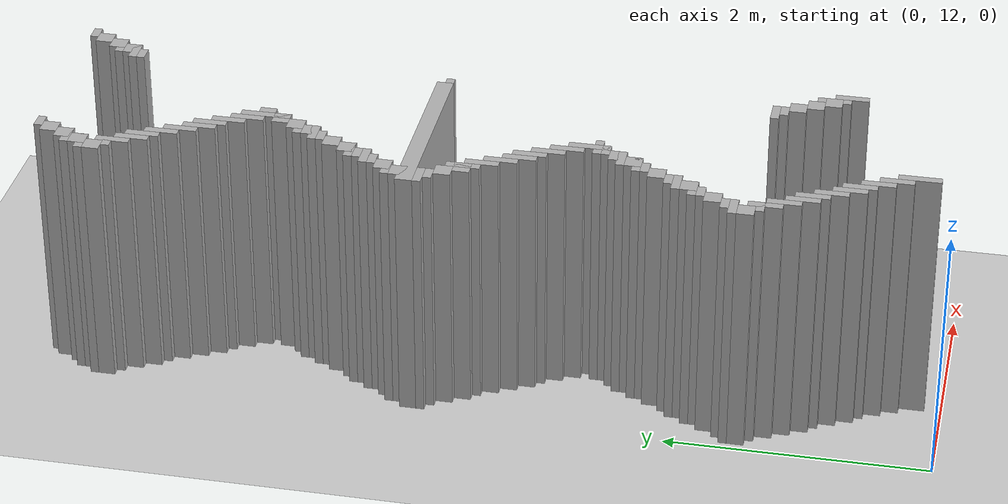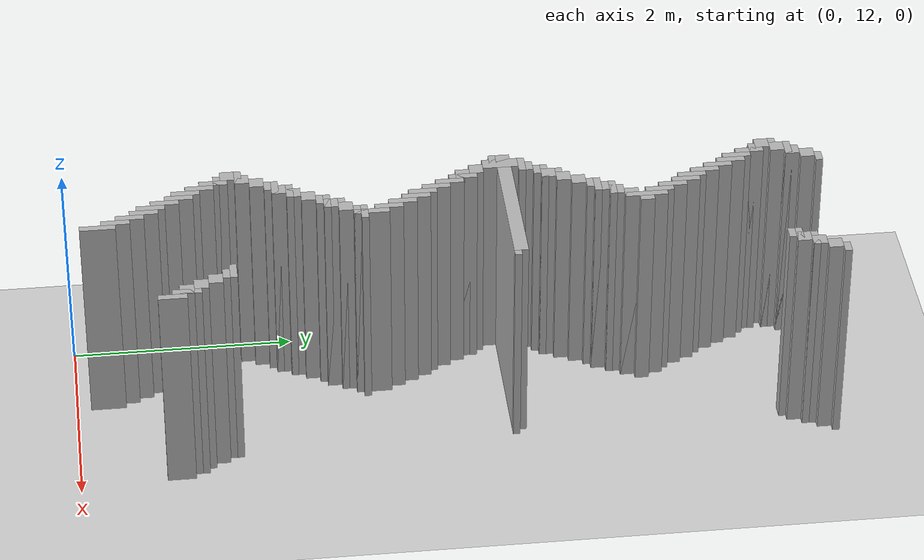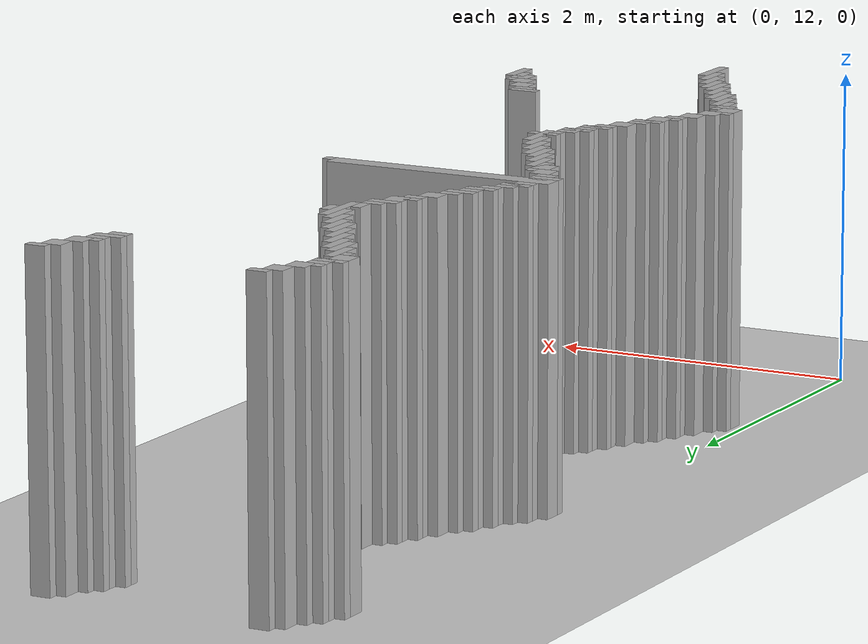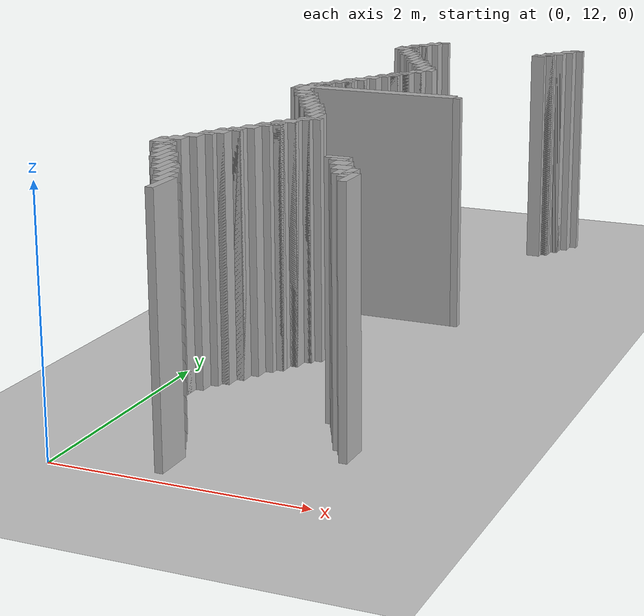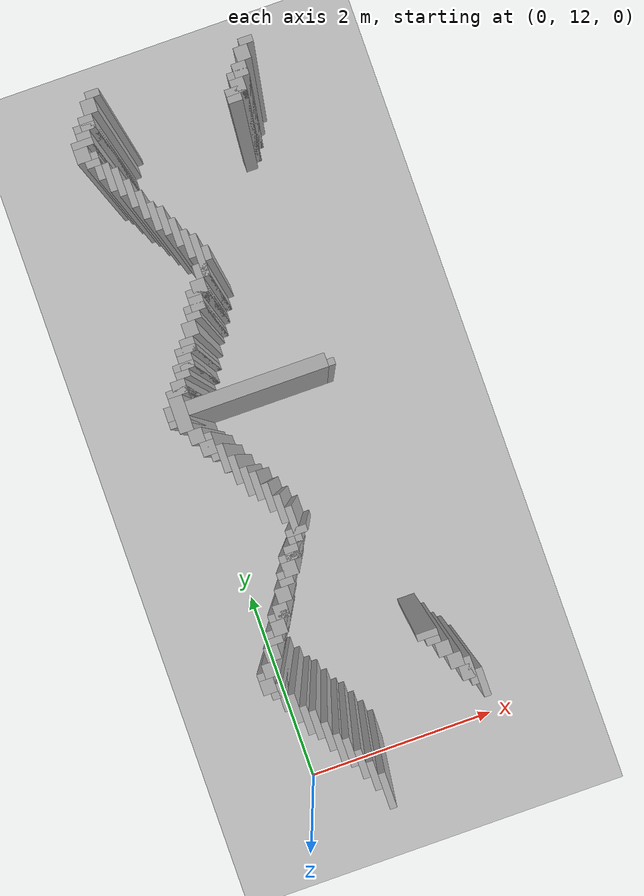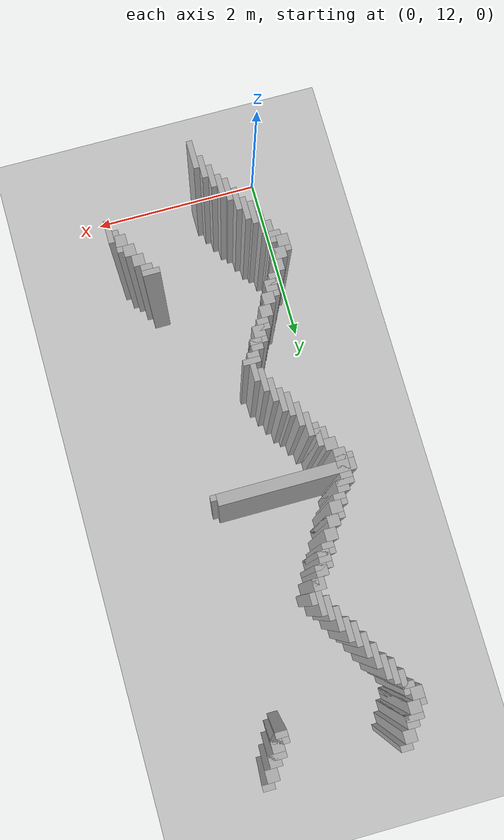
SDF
<sdf version="1.6">
 <world name="slam_world">
  <model name="ground_plane">
   <static>true</static>
   <link name="link">
    <collision name="collision">
     <geometry><plane><normal>0 0 1</normal><size>100 100</size></plane></geometry>
    </collision>
    <visual name="visual">
     <geometry><plane><normal>0 0 1</normal><size>100 100</size></plane></geometry>
     <material>
      <ambient>0.8 0.8 0.8 1</ambient>
      <diffuse>0.8 0.8 0.8 1</diffuse>
      <specular>0.8 0.8 0.8 1</specular>
     </material>
    </visual>
   </link>
  </model>
  <model name="wall_527">
   <static>true</static>
   <pose>0.3829787234042553 18.79787234042553 1.0 0 0 0</pose>
   <link name="link">
    <collision name="collision">
     <geometry><box><size>0.1276595744680851 0.06382978723404255 2.0</size></box></geometry>
    </collision>
    <visual name="visual">
     <geometry><box><size>0.1276595744680851 0.06382978723404255 2.0</size></box></geometry>
     <material><ambient>0.5 0.5 0.5 1</ambient><diffuse>0.7 0.7 0.7 1</diffuse></material>
    </visual>
   </link>
  </model>
  <model name="wall_528">
   <static>true</static>
   <pose>1.7872340425531914 18.79787234042553 1.0 0 0 0</pose>
   <link name="link">
    <collision name="collision">
     <geometry><box><size>0.1276595744680851 0.06382978723404255 2.0</size></box></geometry>
    </collision>
    <visual name="visual">
     <geometry><box><size>0.1276595744680851 0.06382978723404255 2.0</size></box></geometry>
     <material><ambient>0.5 0.5 0.5 1</ambient><diffuse>0.7 0.7 0.7 1</diffuse></material>
    </visual>
   </link>
  </model>
  <model name="wall_533">
   <static>true</static>
   <pose>0.3191489361702127 18.702127659574465 1.0 0 0 0</pose>
   <link name="link">
    <collision name="collision">
     <geometry><box><size>0.1276595744680851 0.1276595744680851 2.0</size></box></geometry>
    </collision>
    <visual name="visual">
     <geometry><box><size>0.1276595744680851 0.1276595744680851 2.0</size></box></geometry>
     <material><ambient>0.5 0.5 0.5 1</ambient><diffuse>0.7 0.7 0.7 1</diffuse></material>
    </visual>
   </link>
  </model>
  <model name="wall_534">
   <static>true</static>
   <pose>1.7234042553191489 18.702127659574465 1.0 0 0 0</pose>
   <link name="link">
    <collision name="collision">
     <geometry><box><size>0.1276595744680851 0.1276595744680851 2.0</size></box></geometry>
    </collision>
    <visual name="visual">
     <geometry><box><size>0.1276595744680851 0.1276595744680851 2.0</size></box></geometry>
     <material><ambient>0.5 0.5 0.5 1</ambient><diffuse>0.7 0.7 0.7 1</diffuse></material>
    </visual>
   </link>
  </model>
  <model name="wall_540">
   <static>true</static>
   <pose>0.2553191489361702 18.574468085106382 1.0 0 0 0</pose>
   <link name="link">
    <collision name="collision">
     <geometry><box><size>0.1276595744680851 0.1276595744680851 2.0</size></box></geometry>
    </collision>
    <visual name="visual">
     <geometry><box><size>0.1276595744680851 0.1276595744680851 2.0</size></box></geometry>
     <material><ambient>0.5 0.5 0.5 1</ambient><diffuse>0.7 0.7 0.7 1</diffuse></material>
    </visual>
   </link>
  </model>
  <model name="wall_541">
   <static>true</static>
   <pose>1.6595744680851063 18.574468085106382 1.0 0 0 0</pose>
   <link name="link">
    <collision name="collision">
     <geometry><box><size>0.1276595744680851 0.1276595744680851 2.0</size></box></geometry>
    </collision>
    <visual name="visual">
     <geometry><box><size>0.1276595744680851 0.1276595744680851 2.0</size></box></geometry>
     <material><ambient>0.5 0.5 0.5 1</ambient><diffuse>0.7 0.7 0.7 1</diffuse></material>
    </visual>
   </link>
  </model>
  <model name="wall_547">
   <static>true</static>
   <pose>0.22340425531914893 18.54255319148936 1.0 0 0 0</pose>
   <link name="link">
    <collision name="collision">
     <geometry><box><size>0.19148936170212766 0.06382978723404255 2.0</size></box></geometry>
    </collision>
    <visual name="visual">
     <geometry><box><size>0.19148936170212766 0.06382978723404255 2.0</size></box></geometry>
     <material><ambient>0.5 0.5 0.5 1</ambient><diffuse>0.7 0.7 0.7 1</diffuse></material>
    </visual>
   </link>
  </model>
  <model name="wall_548">
   <static>true</static>
   <pose>1.627659574468085 18.54255319148936 1.0 0 0 0</pose>
   <link name="link">
    <collision name="collision">
     <geometry><box><size>0.19148936170212766 0.06382978723404255 2.0</size></box></geometry>
    </collision>
    <visual name="visual">
     <geometry><box><size>0.19148936170212766 0.06382978723404255 2.0</size></box></geometry>
     <material><ambient>0.5 0.5 0.5 1</ambient><diffuse>0.7 0.7 0.7 1</diffuse></material>
    </visual>
   </link>
  </model>
  <model name="wall_554">
   <static>true</static>
   <pose>0.19148936170212766 18.446808510638295 1.0 0 0 0</pose>
   <link name="link">
    <collision name="collision">
     <geometry><box><size>0.1276595744680851 0.1276595744680851 2.0</size></box></geometry>
    </collision>
    <visual name="visual">
     <geometry><box><size>0.1276595744680851 0.1276595744680851 2.0</size></box></geometry>
     <material><ambient>0.5 0.5 0.5 1</ambient><diffuse>0.7 0.7 0.7 1</diffuse></material>
    </visual>
   </link>
  </model>
  <model name="wall_555">
   <static>true</static>
   <pose>1.5957446808510638 18.446808510638295 1.0 0 0 0</pose>
   <link name="link">
    <collision name="collision">
     <geometry><box><size>0.1276595744680851 0.1276595744680851 2.0</size></box></geometry>
    </collision>
    <visual name="visual">
     <geometry><box><size>0.1276595744680851 0.1276595744680851 2.0</size></box></geometry>
     <material><ambient>0.5 0.5 0.5 1</ambient><diffuse>0.7 0.7 0.7 1</diffuse></material>
    </visual>
   </link>
  </model>
  <model name="wall_560">
   <static>true</static>
   <pose>0.15957446808510636 18.414893617021274 1.0 0 0 0</pose>
   <link name="link">
    <collision name="collision">
     <geometry><box><size>0.19148936170212766 0.06382978723404255 2.0</size></box></geometry>
    </collision>
    <visual name="visual">
     <geometry><box><size>0.19148936170212766 0.06382978723404255 2.0</size></box></geometry>
     <material><ambient>0.5 0.5 0.5 1</ambient><diffuse>0.7 0.7 0.7 1</diffuse></material>
    </visual>
   </link>
  </model>
  <model name="wall_561">
   <static>true</static>
   <pose>1.5638297872340425 18.414893617021274 1.0 0 0 0</pose>
   <link name="link">
    <collision name="collision">
     <geometry><box><size>0.19148936170212766 0.06382978723404255 2.0</size></box></geometry>
    </collision>
    <visual name="visual">
     <geometry><box><size>0.19148936170212766 0.06382978723404255 2.0</size></box></geometry>
     <material><ambient>0.5 0.5 0.5 1</ambient><diffuse>0.7 0.7 0.7 1</diffuse></material>
    </visual>
   </link>
  </model>
  <model name="wall_570">
   <static>true</static>
   <pose>0.1276595744680851 18.319148936170212 1.0 0 0 0</pose>
   <link name="link">
    <collision name="collision">
     <geometry><box><size>0.1276595744680851 0.1276595744680851 2.0</size></box></geometry>
    </collision>
    <visual name="visual">
     <geometry><box><size>0.1276595744680851 0.1276595744680851 2.0</size></box></geometry>
     <material><ambient>0.5 0.5 0.5 1</ambient><diffuse>0.7 0.7 0.7 1</diffuse></material>
    </visual>
   </link>
  </model>
  <model name="wall_571">
   <static>true</static>
   <pose>1.5319148936170213 18.351063829787233 1.0 0 0 0</pose>
   <link name="link">
    <collision name="collision">
     <geometry><box><size>0.1276595744680851 0.06382978723404255 2.0</size></box></geometry>
    </collision>
    <visual name="visual">
     <geometry><box><size>0.1276595744680851 0.06382978723404255 2.0</size></box></geometry>
     <material><ambient>0.5 0.5 0.5 1</ambient><diffuse>0.7 0.7 0.7 1</diffuse></material>
    </visual>
   </link>
  </model>
  <model name="wall_576">
   <static>true</static>
   <pose>0.22340425531914893 18.191489361702125 1.0 0 0 0</pose>
   <link name="link">
    <collision name="collision">
     <geometry><box><size>0.06382978723404255 0.2553191489361702 2.0</size></box></geometry>
    </collision>
    <visual name="visual">
     <geometry><box><size>0.06382978723404255 0.2553191489361702 2.0</size></box></geometry>
     <material><ambient>0.5 0.5 0.5 1</ambient><diffuse>0.7 0.7 0.7 1</diffuse></material>
    </visual>
   </link>
  </model>
  <model name="wall_583">
   <static>true</static>
   <pose>0.19148936170212766 18.223404255319146 1.0 0 0 0</pose>
   <link name="link">
    <collision name="collision">
     <geometry><box><size>0.1276595744680851 0.06382978723404255 2.0</size></box></geometry>
    </collision>
    <visual name="visual">
     <geometry><box><size>0.1276595744680851 0.06382978723404255 2.0</size></box></geometry>
     <material><ambient>0.5 0.5 0.5 1</ambient><diffuse>0.7 0.7 0.7 1</diffuse></material>
    </visual>
   </link>
  </model>
  <model name="wall_587">
   <static>true</static>
   <pose>0.28723404255319146 18.06382978723404 1.0 0 0 0</pose>
   <link name="link">
    <collision name="collision">
     <geometry><box><size>0.06382978723404255 0.2553191489361702 2.0</size></box></geometry>
    </collision>
    <visual name="visual">
     <geometry><box><size>0.06382978723404255 0.2553191489361702 2.0</size></box></geometry>
     <material><ambient>0.5 0.5 0.5 1</ambient><diffuse>0.7 0.7 0.7 1</diffuse></material>
    </visual>
   </link>
  </model>
  <model name="wall_594">
   <static>true</static>
   <pose>0.351063829787234 18.0 1.0 0 0 0</pose>
   <link name="link">
    <collision name="collision">
     <geometry><box><size>0.06382978723404255 0.2553191489361702 2.0</size></box></geometry>
    </collision>
    <visual name="visual">
     <geometry><box><size>0.06382978723404255 0.2553191489361702 2.0</size></box></geometry>
     <material><ambient>0.5 0.5 0.5 1</ambient><diffuse>0.7 0.7 0.7 1</diffuse></material>
    </visual>
   </link>
  </model>
  <model name="wall_606">
   <static>true</static>
   <pose>0.4148936170212766 17.872340425531913 1.0 0 0 0</pose>
   <link name="link">
    <collision name="collision">
     <geometry><box><size>0.06382978723404255 0.2553191489361702 2.0</size></box></geometry>
    </collision>
    <visual name="visual">
     <geometry><box><size>0.06382978723404255 0.2553191489361702 2.0</size></box></geometry>
     <material><ambient>0.5 0.5 0.5 1</ambient><diffuse>0.7 0.7 0.7 1</diffuse></material>
    </visual>
   </link>
  </model>
  <model name="wall_616">
   <static>true</static>
   <pose>0.4787234042553191 17.74468085106383 1.0 0 0 0</pose>
   <link name="link">
    <collision name="collision">
     <geometry><box><size>0.06382978723404255 0.2553191489361702 2.0</size></box></geometry>
    </collision>
    <visual name="visual">
     <geometry><box><size>0.06382978723404255 0.2553191489361702 2.0</size></box></geometry>
     <material><ambient>0.5 0.5 0.5 1</ambient><diffuse>0.7 0.7 0.7 1</diffuse></material>
    </visual>
   </link>
  </model>
  <model name="wall_623">
   <static>true</static>
   <pose>0.5425531914893617 17.617021276595743 1.0 0 0 0</pose>
   <link name="link">
    <collision name="collision">
     <geometry><box><size>0.06382978723404255 0.2553191489361702 2.0</size></box></geometry>
    </collision>
    <visual name="visual">
     <geometry><box><size>0.06382978723404255 0.2553191489361702 2.0</size></box></geometry>
     <material><ambient>0.5 0.5 0.5 1</ambient><diffuse>0.7 0.7 0.7 1</diffuse></material>
    </visual>
   </link>
  </model>
  <model name="wall_630">
   <static>true</static>
   <pose>0.6063829787234042 17.5531914893617 1.0 0 0 0</pose>
   <link name="link">
    <collision name="collision">
     <geometry><box><size>0.06382978723404255 0.2553191489361702 2.0</size></box></geometry>
    </collision>
    <visual name="visual">
     <geometry><box><size>0.06382978723404255 0.2553191489361702 2.0</size></box></geometry>
     <material><ambient>0.5 0.5 0.5 1</ambient><diffuse>0.7 0.7 0.7 1</diffuse></material>
    </visual>
   </link>
  </model>
  <model name="wall_640">
   <static>true</static>
   <pose>0.6702127659574467 17.425531914893615 1.0 0 0 0</pose>
   <link name="link">
    <collision name="collision">
     <geometry><box><size>0.06382978723404255 0.2553191489361702 2.0</size></box></geometry>
    </collision>
    <visual name="visual">
     <geometry><box><size>0.06382978723404255 0.2553191489361702 2.0</size></box></geometry>
     <material><ambient>0.5 0.5 0.5 1</ambient><diffuse>0.7 0.7 0.7 1</diffuse></material>
    </visual>
   </link>
  </model>
  <model name="wall_650">
   <static>true</static>
   <pose>0.7340425531914893 17.29787234042553 1.0 0 0 0</pose>
   <link name="link">
    <collision name="collision">
     <geometry><box><size>0.06382978723404255 0.2553191489361702 2.0</size></box></geometry>
    </collision>
    <visual name="visual">
     <geometry><box><size>0.06382978723404255 0.2553191489361702 2.0</size></box></geometry>
     <material><ambient>0.5 0.5 0.5 1</ambient><diffuse>0.7 0.7 0.7 1</diffuse></material>
    </visual>
   </link>
  </model>
  <model name="wall_657">
   <static>true</static>
   <pose>0.7978723404255319 17.170212765957444 1.0 0 0 0</pose>
   <link name="link">
    <collision name="collision">
     <geometry><box><size>0.06382978723404255 0.3829787234042553 2.0</size></box></geometry>
    </collision>
    <visual name="visual">
     <geometry><box><size>0.06382978723404255 0.3829787234042553 2.0</size></box></geometry>
     <material><ambient>0.5 0.5 0.5 1</ambient><diffuse>0.7 0.7 0.7 1</diffuse></material>
    </visual>
   </link>
  </model>
  <model name="wall_666">
   <static>true</static>
   <pose>0.8617021276595744 17.170212765957444 1.0 0 0 0</pose>
   <link name="link">
    <collision name="collision">
     <geometry><box><size>0.06382978723404255 0.1276595744680851 2.0</size></box></geometry>
    </collision>
    <visual name="visual">
     <geometry><box><size>0.06382978723404255 0.1276595744680851 2.0</size></box></geometry>
     <material><ambient>0.5 0.5 0.5 1</ambient><diffuse>0.7 0.7 0.7 1</diffuse></material>
    </visual>
   </link>
  </model>
  <model name="wall_677">
   <static>true</static>
   <pose>0.7659574468085106 17.04255319148936 1.0 0 0 0</pose>
   <link name="link">
    <collision name="collision">
     <geometry><box><size>0.1276595744680851 0.1276595744680851 2.0</size></box></geometry>
    </collision>
    <visual name="visual">
     <geometry><box><size>0.1276595744680851 0.1276595744680851 2.0</size></box></geometry>
     <material><ambient>0.5 0.5 0.5 1</ambient><diffuse>0.7 0.7 0.7 1</diffuse></material>
    </visual>
   </link>
  </model>
  <model name="wall_686">
   <static>true</static>
   <pose>0.702127659574468 16.914893617021274 1.0 0 0 0</pose>
   <link name="link">
    <collision name="collision">
     <geometry><box><size>0.1276595744680851 0.1276595744680851 2.0</size></box></geometry>
    </collision>
    <visual name="visual">
     <geometry><box><size>0.1276595744680851 0.1276595744680851 2.0</size></box></geometry>
     <material><ambient>0.5 0.5 0.5 1</ambient><diffuse>0.7 0.7 0.7 1</diffuse></material>
    </visual>
   </link>
  </model>
  <model name="wall_696">
   <static>true</static>
   <pose>0.6702127659574467 16.882978723404253 1.0 0 0 0</pose>
   <link name="link">
    <collision name="collision">
     <geometry><box><size>0.19148936170212766 0.06382978723404255 2.0</size></box></geometry>
    </collision>
    <visual name="visual">
     <geometry><box><size>0.19148936170212766 0.06382978723404255 2.0</size></box></geometry>
     <material><ambient>0.5 0.5 0.5 1</ambient><diffuse>0.7 0.7 0.7 1</diffuse></material>
    </visual>
   </link>
  </model>
  <model name="wall_706">
   <static>true</static>
   <pose>0.6382978723404255 16.78723404255319 1.0 0 0 0</pose>
   <link name="link">
    <collision name="collision">
     <geometry><box><size>0.1276595744680851 0.1276595744680851 2.0</size></box></geometry>
    </collision>
    <visual name="visual">
     <geometry><box><size>0.1276595744680851 0.1276595744680851 2.0</size></box></geometry>
     <material><ambient>0.5 0.5 0.5 1</ambient><diffuse>0.7 0.7 0.7 1</diffuse></material>
    </visual>
   </link>
  </model>
  <model name="wall_716">
   <static>true</static>
   <pose>0.6063829787234042 16.75531914893617 1.0 0 0 0</pose>
   <link name="link">
    <collision name="collision">
     <geometry><box><size>0.19148936170212766 0.06382978723404255 2.0</size></box></geometry>
    </collision>
    <visual name="visual">
     <geometry><box><size>0.19148936170212766 0.06382978723404255 2.0</size></box></geometry>
     <material><ambient>0.5 0.5 0.5 1</ambient><diffuse>0.7 0.7 0.7 1</diffuse></material>
    </visual>
   </link>
  </model>
  <model name="wall_726">
   <static>true</static>
   <pose>0.5744680851063829 16.691489361702125 1.0 0 0 0</pose>
   <link name="link">
    <collision name="collision">
     <geometry><box><size>0.1276595744680851 0.06382978723404255 2.0</size></box></geometry>
    </collision>
    <visual name="visual">
     <geometry><box><size>0.1276595744680851 0.06382978723404255 2.0</size></box></geometry>
     <material><ambient>0.5 0.5 0.5 1</ambient><diffuse>0.7 0.7 0.7 1</diffuse></material>
    </visual>
   </link>
  </model>
  <model name="wall_732">
   <static>true</static>
   <pose>0.5106382978723404 16.595744680851062 1.0 0 0 0</pose>
   <link name="link">
    <collision name="collision">
     <geometry><box><size>0.1276595744680851 0.1276595744680851 2.0</size></box></geometry>
    </collision>
    <visual name="visual">
     <geometry><box><size>0.1276595744680851 0.1276595744680851 2.0</size></box></geometry>
     <material><ambient>0.5 0.5 0.5 1</ambient><diffuse>0.7 0.7 0.7 1</diffuse></material>
    </visual>
   </link>
  </model>
  <model name="wall_742">
   <static>true</static>
   <pose>0.44680851063829785 16.46808510638298 1.0 0 0 0</pose>
   <link name="link">
    <collision name="collision">
     <geometry><box><size>0.1276595744680851 0.1276595744680851 2.0</size></box></geometry>
    </collision>
    <visual name="visual">
     <geometry><box><size>0.1276595744680851 0.1276595744680851 2.0</size></box></geometry>
     <material><ambient>0.5 0.5 0.5 1</ambient><diffuse>0.7 0.7 0.7 1</diffuse></material>
    </visual>
   </link>
  </model>
  <model name="wall_752">
   <static>true</static>
   <pose>0.4148936170212766 16.436170212765955 1.0 0 0 0</pose>
   <link name="link">
    <collision name="collision">
     <geometry><box><size>0.19148936170212766 0.06382978723404255 2.0</size></box></geometry>
    </collision>
    <visual name="visual">
     <geometry><box><size>0.19148936170212766 0.06382978723404255 2.0</size></box></geometry>
     <material><ambient>0.5 0.5 0.5 1</ambient><diffuse>0.7 0.7 0.7 1</diffuse></material>
    </visual>
   </link>
  </model>
  <model name="wall_762">
   <static>true</static>
   <pose>0.3829787234042553 16.340425531914892 1.0 0 0 0</pose>
   <link name="link">
    <collision name="collision">
     <geometry><box><size>0.1276595744680851 0.1276595744680851 2.0</size></box></geometry>
    </collision>
    <visual name="visual">
     <geometry><box><size>0.1276595744680851 0.1276595744680851 2.0</size></box></geometry>
     <material><ambient>0.5 0.5 0.5 1</ambient><diffuse>0.7 0.7 0.7 1</diffuse></material>
    </visual>
   </link>
  </model>
  <model name="wall_768">
   <static>true</static>
   <pose>0.351063829787234 16.30851063829787 1.0 0 0 0</pose>
   <link name="link">
    <collision name="collision">
     <geometry><box><size>0.19148936170212766 0.06382978723404255 2.0</size></box></geometry>
    </collision>
    <visual name="visual">
     <geometry><box><size>0.19148936170212766 0.06382978723404255 2.0</size></box></geometry>
     <material><ambient>0.5 0.5 0.5 1</ambient><diffuse>0.7 0.7 0.7 1</diffuse></material>
    </visual>
   </link>
  </model>
  <model name="wall_778">
   <static>true</static>
   <pose>0.3191489361702127 16.24468085106383 1.0 0 0 0</pose>
   <link name="link">
    <collision name="collision">
     <geometry><box><size>0.1276595744680851 0.06382978723404255 2.0</size></box></geometry>
    </collision>
    <visual name="visual">
     <geometry><box><size>0.1276595744680851 0.06382978723404255 2.0</size></box></geometry>
     <material><ambient>0.5 0.5 0.5 1</ambient><diffuse>0.7 0.7 0.7 1</diffuse></material>
    </visual>
   </link>
  </model>
  <model name="wall_784">
   <static>true</static>
   <pose>0.2553191489361702 16.148936170212764 1.0 0 0 0</pose>
   <link name="link">
    <collision name="collision">
     <geometry><box><size>0.1276595744680851 0.1276595744680851 2.0</size></box></geometry>
    </collision>
    <visual name="visual">
     <geometry><box><size>0.1276595744680851 0.1276595744680851 2.0</size></box></geometry>
     <material><ambient>0.5 0.5 0.5 1</ambient><diffuse>0.7 0.7 0.7 1</diffuse></material>
    </visual>
   </link>
  </model>
  <model name="wall_794">
   <static>true</static>
   <pose>0.22340425531914893 16.117021276595743 1.0 0 0 0</pose>
   <link name="link">
    <collision name="collision">
     <geometry><box><size>0.19148936170212766 0.06382978723404255 2.0</size></box></geometry>
    </collision>
    <visual name="visual">
     <geometry><box><size>0.19148936170212766 0.06382978723404255 2.0</size></box></geometry>
     <material><ambient>0.5 0.5 0.5 1</ambient><diffuse>0.7 0.7 0.7 1</diffuse></material>
    </visual>
   </link>
  </model>
  <model name="wall_803">
   <static>true</static>
   <pose>0.19148936170212766 15.925531914893616 1.0 0 0 0</pose>
   <link name="link">
    <collision name="collision">
     <geometry><box><size>0.1276595744680851 0.3191489361702127 2.0</size></box></geometry>
    </collision>
    <visual name="visual">
     <geometry><box><size>0.1276595744680851 0.3191489361702127 2.0</size></box></geometry>
     <material><ambient>0.5 0.5 0.5 1</ambient><diffuse>0.7 0.7 0.7 1</diffuse></material>
    </visual>
   </link>
  </model>
  <model name="wall_809">
   <static>true</static>
   <pose>0.7978723404255319 15.957446808510637 1.0 0 0 0</pose>
   <link name="link">
    <collision name="collision">
     <geometry><box><size>1.4680851063829785 0.1276595744680851 2.0</size></box></geometry>
    </collision>
    <visual name="visual">
     <geometry><box><size>1.4680851063829785 0.1276595744680851 2.0</size></box></geometry>
     <material><ambient>0.5 0.5 0.5 1</ambient><diffuse>0.7 0.7 0.7 1</diffuse></material>
    </visual>
   </link>
  </model>
  <model name="wall_815">
   <static>true</static>
   <pose>1.5638297872340425 15.925531914893616 1.0 0 0 0</pose>
   <link name="link">
    <collision name="collision">
     <geometry><box><size>0.06382978723404255 0.06382978723404255 2.0</size></box></geometry>
    </collision>
    <visual name="visual">
     <geometry><box><size>0.06382978723404255 0.06382978723404255 2.0</size></box></geometry>
     <material><ambient>0.5 0.5 0.5 1</ambient><diffuse>0.7 0.7 0.7 1</diffuse></material>
    </visual>
   </link>
  </model>
  <model name="wall_822">
   <static>true</static>
   <pose>0.15957446808510636 15.861702127659573 1.0 0 0 0</pose>
   <link name="link">
    <collision name="collision">
     <geometry><box><size>0.19148936170212766 0.06382978723404255 2.0</size></box></geometry>
    </collision>
    <visual name="visual">
     <geometry><box><size>0.19148936170212766 0.06382978723404255 2.0</size></box></geometry>
     <material><ambient>0.5 0.5 0.5 1</ambient><diffuse>0.7 0.7 0.7 1</diffuse></material>
    </visual>
   </link>
  </model>
  <model name="wall_832">
   <static>true</static>
   <pose>0.2553191489361702 15.702127659574467 1.0 0 0 0</pose>
   <link name="link">
    <collision name="collision">
     <geometry><box><size>0.1276595744680851 0.1276595744680851 2.0</size></box></geometry>
    </collision>
    <visual name="visual">
     <geometry><box><size>0.1276595744680851 0.1276595744680851 2.0</size></box></geometry>
     <material><ambient>0.5 0.5 0.5 1</ambient><diffuse>0.7 0.7 0.7 1</diffuse></material>
    </visual>
   </link>
  </model>
  <model name="wall_838">
   <static>true</static>
   <pose>0.351063829787234 15.574468085106382 1.0 0 0 0</pose>
   <link name="link">
    <collision name="collision">
     <geometry><box><size>0.06382978723404255 0.2553191489361702 2.0</size></box></geometry>
    </collision>
    <visual name="visual">
     <geometry><box><size>0.06382978723404255 0.2553191489361702 2.0</size></box></geometry>
     <material><ambient>0.5 0.5 0.5 1</ambient><diffuse>0.7 0.7 0.7 1</diffuse></material>
    </visual>
   </link>
  </model>
  <model name="wall_844">
   <static>true</static>
   <pose>0.3191489361702127 15.574468085106382 1.0 0 0 0</pose>
   <link name="link">
    <collision name="collision">
     <geometry><box><size>0.1276595744680851 0.1276595744680851 2.0</size></box></geometry>
    </collision>
    <visual name="visual">
     <geometry><box><size>0.1276595744680851 0.1276595744680851 2.0</size></box></geometry>
     <material><ambient>0.5 0.5 0.5 1</ambient><diffuse>0.7 0.7 0.7 1</diffuse></material>
    </visual>
   </link>
  </model>
  <model name="wall_848">
   <static>true</static>
   <pose>0.4148936170212766 15.446808510638297 1.0 0 0 0</pose>
   <link name="link">
    <collision name="collision">
     <geometry><box><size>0.06382978723404255 0.2553191489361702 2.0</size></box></geometry>
    </collision>
    <visual name="visual">
     <geometry><box><size>0.06382978723404255 0.2553191489361702 2.0</size></box></geometry>
     <material><ambient>0.5 0.5 0.5 1</ambient><diffuse>0.7 0.7 0.7 1</diffuse></material>
    </visual>
   </link>
  </model>
  <model name="wall_855">
   <static>true</static>
   <pose>0.4787234042553191 15.319148936170212 1.0 0 0 0</pose>
   <link name="link">
    <collision name="collision">
     <geometry><box><size>0.06382978723404255 0.2553191489361702 2.0</size></box></geometry>
    </collision>
    <visual name="visual">
     <geometry><box><size>0.06382978723404255 0.2553191489361702 2.0</size></box></geometry>
     <material><ambient>0.5 0.5 0.5 1</ambient><diffuse>0.7 0.7 0.7 1</diffuse></material>
    </visual>
   </link>
  </model>
  <model name="wall_861">
   <static>true</static>
   <pose>0.5425531914893617 15.191489361702127 1.0 0 0 0</pose>
   <link name="link">
    <collision name="collision">
     <geometry><box><size>0.06382978723404255 0.2553191489361702 2.0</size></box></geometry>
    </collision>
    <visual name="visual">
     <geometry><box><size>0.06382978723404255 0.2553191489361702 2.0</size></box></geometry>
     <material><ambient>0.5 0.5 0.5 1</ambient><diffuse>0.7 0.7 0.7 1</diffuse></material>
    </visual>
   </link>
  </model>
  <model name="wall_867">
   <static>true</static>
   <pose>0.6063829787234042 15.127659574468083 1.0 0 0 0</pose>
   <link name="link">
    <collision name="collision">
     <geometry><box><size>0.06382978723404255 0.2553191489361702 2.0</size></box></geometry>
    </collision>
    <visual name="visual">
     <geometry><box><size>0.06382978723404255 0.2553191489361702 2.0</size></box></geometry>
     <material><ambient>0.5 0.5 0.5 1</ambient><diffuse>0.7 0.7 0.7 1</diffuse></material>
    </visual>
   </link>
  </model>
  <model name="wall_874">
   <static>true</static>
   <pose>0.6702127659574467 14.999999999999998 1.0 0 0 0</pose>
   <link name="link">
    <collision name="collision">
     <geometry><box><size>0.06382978723404255 0.2553191489361702 2.0</size></box></geometry>
    </collision>
    <visual name="visual">
     <geometry><box><size>0.06382978723404255 0.2553191489361702 2.0</size></box></geometry>
     <material><ambient>0.5 0.5 0.5 1</ambient><diffuse>0.7 0.7 0.7 1</diffuse></material>
    </visual>
   </link>
  </model>
  <model name="wall_881">
   <static>true</static>
   <pose>0.7340425531914893 14.872340425531913 1.0 0 0 0</pose>
   <link name="link">
    <collision name="collision">
     <geometry><box><size>0.06382978723404255 0.2553191489361702 2.0</size></box></geometry>
    </collision>
    <visual name="visual">
     <geometry><box><size>0.06382978723404255 0.2553191489361702 2.0</size></box></geometry>
     <material><ambient>0.5 0.5 0.5 1</ambient><diffuse>0.7 0.7 0.7 1</diffuse></material>
    </visual>
   </link>
  </model>
  <model name="wall_887">
   <static>true</static>
   <pose>0.7978723404255319 14.712765957446807 1.0 0 0 0</pose>
   <link name="link">
    <collision name="collision">
     <geometry><box><size>0.06382978723404255 0.3191489361702127 2.0</size></box></geometry>
    </collision>
    <visual name="visual">
     <geometry><box><size>0.06382978723404255 0.3191489361702127 2.0</size></box></geometry>
     <material><ambient>0.5 0.5 0.5 1</ambient><diffuse>0.7 0.7 0.7 1</diffuse></material>
    </visual>
   </link>
  </model>
  <model name="wall_903">
   <static>true</static>
   <pose>0.7978723404255319 14.648936170212766 1.0 0 0 0</pose>
   <link name="link">
    <collision name="collision">
     <geometry><box><size>0.19148936170212766 0.06382978723404255 2.0</size></box></geometry>
    </collision>
    <visual name="visual">
     <geometry><box><size>0.19148936170212766 0.06382978723404255 2.0</size></box></geometry>
     <material><ambient>0.5 0.5 0.5 1</ambient><diffuse>0.7 0.7 0.7 1</diffuse></material>
    </visual>
   </link>
  </model>
  <model name="wall_910">
   <static>true</static>
   <pose>0.7659574468085106 14.585106382978722 1.0 0 0 0</pose>
   <link name="link">
    <collision name="collision">
     <geometry><box><size>0.1276595744680851 0.06382978723404255 2.0</size></box></geometry>
    </collision>
    <visual name="visual">
     <geometry><box><size>0.1276595744680851 0.06382978723404255 2.0</size></box></geometry>
     <material><ambient>0.5 0.5 0.5 1</ambient><diffuse>0.7 0.7 0.7 1</diffuse></material>
    </visual>
   </link>
  </model>
  <model name="wall_916">
   <static>true</static>
   <pose>0.702127659574468 14.489361702127658 1.0 0 0 0</pose>
   <link name="link">
    <collision name="collision">
     <geometry><box><size>0.1276595744680851 0.1276595744680851 2.0</size></box></geometry>
    </collision>
    <visual name="visual">
     <geometry><box><size>0.1276595744680851 0.1276595744680851 2.0</size></box></geometry>
     <material><ambient>0.5 0.5 0.5 1</ambient><diffuse>0.7 0.7 0.7 1</diffuse></material>
    </visual>
   </link>
  </model>
  <model name="wall_924">
   <static>true</static>
   <pose>0.6702127659574467 14.457446808510637 1.0 0 0 0</pose>
   <link name="link">
    <collision name="collision">
     <geometry><box><size>0.19148936170212766 0.06382978723404255 2.0</size></box></geometry>
    </collision>
    <visual name="visual">
     <geometry><box><size>0.19148936170212766 0.06382978723404255 2.0</size></box></geometry>
     <material><ambient>0.5 0.5 0.5 1</ambient><diffuse>0.7 0.7 0.7 1</diffuse></material>
    </visual>
   </link>
  </model>
  <model name="wall_932">
   <static>true</static>
   <pose>0.6382978723404255 14.361702127659573 1.0 0 0 0</pose>
   <link name="link">
    <collision name="collision">
     <geometry><box><size>0.1276595744680851 0.1276595744680851 2.0</size></box></geometry>
    </collision>
    <visual name="visual">
     <geometry><box><size>0.1276595744680851 0.1276595744680851 2.0</size></box></geometry>
     <material><ambient>0.5 0.5 0.5 1</ambient><diffuse>0.7 0.7 0.7 1</diffuse></material>
    </visual>
   </link>
  </model>
  <model name="wall_940">
   <static>true</static>
   <pose>0.6063829787234042 14.329787234042552 1.0 0 0 0</pose>
   <link name="link">
    <collision name="collision">
     <geometry><box><size>0.19148936170212766 0.06382978723404255 2.0</size></box></geometry>
    </collision>
    <visual name="visual">
     <geometry><box><size>0.19148936170212766 0.06382978723404255 2.0</size></box></geometry>
     <material><ambient>0.5 0.5 0.5 1</ambient><diffuse>0.7 0.7 0.7 1</diffuse></material>
    </visual>
   </link>
  </model>
  <model name="wall_948">
   <static>true</static>
   <pose>0.5744680851063829 14.265957446808509 1.0 0 0 0</pose>
   <link name="link">
    <collision name="collision">
     <geometry><box><size>0.1276595744680851 0.06382978723404255 2.0</size></box></geometry>
    </collision>
    <visual name="visual">
     <geometry><box><size>0.1276595744680851 0.06382978723404255 2.0</size></box></geometry>
     <material><ambient>0.5 0.5 0.5 1</ambient><diffuse>0.7 0.7 0.7 1</diffuse></material>
    </visual>
   </link>
  </model>
  <model name="wall_955">
   <static>true</static>
   <pose>0.5106382978723404 14.170212765957446 1.0 0 0 0</pose>
   <link name="link">
    <collision name="collision">
     <geometry><box><size>0.1276595744680851 0.1276595744680851 2.0</size></box></geometry>
    </collision>
    <visual name="visual">
     <geometry><box><size>0.1276595744680851 0.1276595744680851 2.0</size></box></geometry>
     <material><ambient>0.5 0.5 0.5 1</ambient><diffuse>0.7 0.7 0.7 1</diffuse></material>
    </visual>
   </link>
  </model>
  <model name="wall_963">
   <static>true</static>
   <pose>0.44680851063829785 14.042553191489361 1.0 0 0 0</pose>
   <link name="link">
    <collision name="collision">
     <geometry><box><size>0.1276595744680851 0.1276595744680851 2.0</size></box></geometry>
    </collision>
    <visual name="visual">
     <geometry><box><size>0.1276595744680851 0.1276595744680851 2.0</size></box></geometry>
     <material><ambient>0.5 0.5 0.5 1</ambient><diffuse>0.7 0.7 0.7 1</diffuse></material>
    </visual>
   </link>
  </model>
  <model name="wall_971">
   <static>true</static>
   <pose>0.4148936170212766 14.010638297872338 1.0 0 0 0</pose>
   <link name="link">
    <collision name="collision">
     <geometry><box><size>0.19148936170212766 0.06382978723404255 2.0</size></box></geometry>
    </collision>
    <visual name="visual">
     <geometry><box><size>0.19148936170212766 0.06382978723404255 2.0</size></box></geometry>
     <material><ambient>0.5 0.5 0.5 1</ambient><diffuse>0.7 0.7 0.7 1</diffuse></material>
    </visual>
   </link>
  </model>
  <model name="wall_979">
   <static>true</static>
   <pose>0.3829787234042553 13.914893617021276 1.0 0 0 0</pose>
   <link name="link">
    <collision name="collision">
     <geometry><box><size>0.1276595744680851 0.1276595744680851 2.0</size></box></geometry>
    </collision>
    <visual name="visual">
     <geometry><box><size>0.1276595744680851 0.1276595744680851 2.0</size></box></geometry>
     <material><ambient>0.5 0.5 0.5 1</ambient><diffuse>0.7 0.7 0.7 1</diffuse></material>
    </visual>
   </link>
  </model>
  <model name="wall_986">
   <static>true</static>
   <pose>0.351063829787234 13.882978723404253 1.0 0 0 0</pose>
   <link name="link">
    <collision name="collision">
     <geometry><box><size>0.19148936170212766 0.06382978723404255 2.0</size></box></geometry>
    </collision>
    <visual name="visual">
     <geometry><box><size>0.19148936170212766 0.06382978723404255 2.0</size></box></geometry>
     <material><ambient>0.5 0.5 0.5 1</ambient><diffuse>0.7 0.7 0.7 1</diffuse></material>
    </visual>
   </link>
  </model>
  <model name="wall_994">
   <static>true</static>
   <pose>0.3191489361702127 13.819148936170212 1.0 0 0 0</pose>
   <link name="link">
    <collision name="collision">
     <geometry><box><size>0.1276595744680851 0.06382978723404255 2.0</size></box></geometry>
    </collision>
    <visual name="visual">
     <geometry><box><size>0.1276595744680851 0.06382978723404255 2.0</size></box></geometry>
     <material><ambient>0.5 0.5 0.5 1</ambient><diffuse>0.7 0.7 0.7 1</diffuse></material>
    </visual>
   </link>
  </model>
  <model name="wall_1001">
   <static>true</static>
   <pose>0.2553191489361702 13.723404255319148 1.0 0 0 0</pose>
   <link name="link">
    <collision name="collision">
     <geometry><box><size>0.1276595744680851 0.1276595744680851 2.0</size></box></geometry>
    </collision>
    <visual name="visual">
     <geometry><box><size>0.1276595744680851 0.1276595744680851 2.0</size></box></geometry>
     <material><ambient>0.5 0.5 0.5 1</ambient><diffuse>0.7 0.7 0.7 1</diffuse></material>
    </visual>
   </link>
  </model>
  <model name="wall_1009">
   <static>true</static>
   <pose>0.19148936170212766 13.595744680851062 1.0 0 0 0</pose>
   <link name="link">
    <collision name="collision">
     <geometry><box><size>0.1276595744680851 0.1276595744680851 2.0</size></box></geometry>
    </collision>
    <visual name="visual">
     <geometry><box><size>0.1276595744680851 0.1276595744680851 2.0</size></box></geometry>
     <material><ambient>0.5 0.5 0.5 1</ambient><diffuse>0.7 0.7 0.7 1</diffuse></material>
    </visual>
   </link>
  </model>
  <model name="wall_1017">
   <static>true</static>
   <pose>0.15957446808510636 13.563829787234042 1.0 0 0 0</pose>
   <link name="link">
    <collision name="collision">
     <geometry><box><size>0.19148936170212766 0.06382978723404255 2.0</size></box></geometry>
    </collision>
    <visual name="visual">
     <geometry><box><size>0.19148936170212766 0.06382978723404255 2.0</size></box></geometry>
     <material><ambient>0.5 0.5 0.5 1</ambient><diffuse>0.7 0.7 0.7 1</diffuse></material>
    </visual>
   </link>
  </model>
  <model name="wall_1026">
   <static>true</static>
   <pose>0.1276595744680851 13.468085106382977 1.0 0 0 0</pose>
   <link name="link">
    <collision name="collision">
     <geometry><box><size>0.1276595744680851 0.1276595744680851 2.0</size></box></geometry>
    </collision>
    <visual name="visual">
     <geometry><box><size>0.1276595744680851 0.1276595744680851 2.0</size></box></geometry>
     <material><ambient>0.5 0.5 0.5 1</ambient><diffuse>0.7 0.7 0.7 1</diffuse></material>
    </visual>
   </link>
  </model>
  <model name="wall_1034">
   <static>true</static>
   <pose>0.22340425531914893 13.340425531914892 1.0 0 0 0</pose>
   <link name="link">
    <collision name="collision">
     <geometry><box><size>0.06382978723404255 0.2553191489361702 2.0</size></box></geometry>
    </collision>
    <visual name="visual">
     <geometry><box><size>0.06382978723404255 0.2553191489361702 2.0</size></box></geometry>
     <material><ambient>0.5 0.5 0.5 1</ambient><diffuse>0.7 0.7 0.7 1</diffuse></material>
    </visual>
   </link>
  </model>
  <model name="wall_1035">
   <static>true</static>
   <pose>1.5638297872340425 13.436170212765957 1.0 0 0 0</pose>
   <link name="link">
    <collision name="collision">
     <geometry><box><size>0.19148936170212766 0.06382978723404255 2.0</size></box></geometry>
    </collision>
    <visual name="visual">
     <geometry><box><size>0.19148936170212766 0.06382978723404255 2.0</size></box></geometry>
     <material><ambient>0.5 0.5 0.5 1</ambient><diffuse>0.7 0.7 0.7 1</diffuse></material>
    </visual>
   </link>
  </model>
  <model name="wall_1043">
   <static>true</static>
   <pose>0.19148936170212766 13.372340425531913 1.0 0 0 0</pose>
   <link name="link">
    <collision name="collision">
     <geometry><box><size>0.1276595744680851 0.06382978723404255 2.0</size></box></geometry>
    </collision>
    <visual name="visual">
     <geometry><box><size>0.1276595744680851 0.06382978723404255 2.0</size></box></geometry>
     <material><ambient>0.5 0.5 0.5 1</ambient><diffuse>0.7 0.7 0.7 1</diffuse></material>
    </visual>
   </link>
  </model>
  <model name="wall_1044">
   <static>true</static>
   <pose>1.5957446808510638 13.372340425531913 1.0 0 0 0</pose>
   <link name="link">
    <collision name="collision">
     <geometry><box><size>0.1276595744680851 0.06382978723404255 2.0</size></box></geometry>
    </collision>
    <visual name="visual">
     <geometry><box><size>0.1276595744680851 0.06382978723404255 2.0</size></box></geometry>
     <material><ambient>0.5 0.5 0.5 1</ambient><diffuse>0.7 0.7 0.7 1</diffuse></material>
    </visual>
   </link>
  </model>
  <model name="wall_1049">
   <static>true</static>
   <pose>0.28723404255319146 13.212765957446807 1.0 0 0 0</pose>
   <link name="link">
    <collision name="collision">
     <geometry><box><size>0.06382978723404255 0.2553191489361702 2.0</size></box></geometry>
    </collision>
    <visual name="visual">
     <geometry><box><size>0.06382978723404255 0.2553191489361702 2.0</size></box></geometry>
     <material><ambient>0.5 0.5 0.5 1</ambient><diffuse>0.7 0.7 0.7 1</diffuse></material>
    </visual>
   </link>
  </model>
  <model name="wall_1050">
   <static>true</static>
   <pose>1.6595744680851063 13.27659574468085 1.0 0 0 0</pose>
   <link name="link">
    <collision name="collision">
     <geometry><box><size>0.1276595744680851 0.1276595744680851 2.0</size></box></geometry>
    </collision>
    <visual name="visual">
     <geometry><box><size>0.1276595744680851 0.1276595744680851 2.0</size></box></geometry>
     <material><ambient>0.5 0.5 0.5 1</ambient><diffuse>0.7 0.7 0.7 1</diffuse></material>
    </visual>
   </link>
  </model>
  <model name="wall_1059">
   <static>true</static>
   <pose>0.351063829787234 13.085106382978722 1.0 0 0 0</pose>
   <link name="link">
    <collision name="collision">
     <geometry><box><size>0.06382978723404255 0.2553191489361702 2.0</size></box></geometry>
    </collision>
    <visual name="visual">
     <geometry><box><size>0.06382978723404255 0.2553191489361702 2.0</size></box></geometry>
     <material><ambient>0.5 0.5 0.5 1</ambient><diffuse>0.7 0.7 0.7 1</diffuse></material>
    </visual>
   </link>
  </model>
  <model name="wall_1060">
   <static>true</static>
   <pose>1.7234042553191489 13.148936170212766 1.0 0 0 0</pose>
   <link name="link">
    <collision name="collision">
     <geometry><box><size>0.1276595744680851 0.1276595744680851 2.0</size></box></geometry>
    </collision>
    <visual name="visual">
     <geometry><box><size>0.1276595744680851 0.1276595744680851 2.0</size></box></geometry>
     <material><ambient>0.5 0.5 0.5 1</ambient><diffuse>0.7 0.7 0.7 1</diffuse></material>
    </visual>
   </link>
  </model>
  <model name="wall_1069">
   <static>true</static>
   <pose>0.4148936170212766 13.02127659574468 1.0 0 0 0</pose>
   <link name="link">
    <collision name="collision">
     <geometry><box><size>0.06382978723404255 0.2553191489361702 2.0</size></box></geometry>
    </collision>
    <visual name="visual">
     <geometry><box><size>0.06382978723404255 0.2553191489361702 2.0</size></box></geometry>
     <material><ambient>0.5 0.5 0.5 1</ambient><diffuse>0.7 0.7 0.7 1</diffuse></material>
    </visual>
   </link>
  </model>
  <model name="wall_1070">
   <static>true</static>
   <pose>1.8191489361702127 13.02127659574468 1.0 0 0 0</pose>
   <link name="link">
    <collision name="collision">
     <geometry><box><size>0.06382978723404255 0.2553191489361702 2.0</size></box></geometry>
    </collision>
    <visual name="visual">
     <geometry><box><size>0.06382978723404255 0.2553191489361702 2.0</size></box></geometry>
     <material><ambient>0.5 0.5 0.5 1</ambient><diffuse>0.7 0.7 0.7 1</diffuse></material>
    </visual>
   </link>
  </model>
  <model name="wall_1079">
   <static>true</static>
   <pose>1.7872340425531914 13.02127659574468 1.0 0 0 0</pose>
   <link name="link">
    <collision name="collision">
     <geometry><box><size>0.1276595744680851 0.1276595744680851 2.0</size></box></geometry>
    </collision>
    <visual name="visual">
     <geometry><box><size>0.1276595744680851 0.1276595744680851 2.0</size></box></geometry>
     <material><ambient>0.5 0.5 0.5 1</ambient><diffuse>0.7 0.7 0.7 1</diffuse></material>
    </visual>
   </link>
  </model>
  <model name="wall_1086">
   <static>true</static>
   <pose>0.4787234042553191 12.893617021276595 1.0 0 0 0</pose>
   <link name="link">
    <collision name="collision">
     <geometry><box><size>0.06382978723404255 0.2553191489361702 2.0</size></box></geometry>
    </collision>
    <visual name="visual">
     <geometry><box><size>0.06382978723404255 0.2553191489361702 2.0</size></box></geometry>
     <material><ambient>0.5 0.5 0.5 1</ambient><diffuse>0.7 0.7 0.7 1</diffuse></material>
    </visual>
   </link>
  </model>
  <model name="wall_1087">
   <static>true</static>
   <pose>1.8829787234042552 12.893617021276595 1.0 0 0 0</pose>
   <link name="link">
    <collision name="collision">
     <geometry><box><size>0.06382978723404255 0.2553191489361702 2.0</size></box></geometry>
    </collision>
    <visual name="visual">
     <geometry><box><size>0.06382978723404255 0.2553191489361702 2.0</size></box></geometry>
     <material><ambient>0.5 0.5 0.5 1</ambient><diffuse>0.7 0.7 0.7 1</diffuse></material>
    </visual>
   </link>
  </model>
  <model name="wall_1099">
   <static>true</static>
   <pose>0.5425531914893617 12.76595744680851 1.0 0 0 0</pose>
   <link name="link">
    <collision name="collision">
     <geometry><box><size>0.06382978723404255 0.2553191489361702 2.0</size></box></geometry>
    </collision>
    <visual name="visual">
     <geometry><box><size>0.06382978723404255 0.2553191489361702 2.0</size></box></geometry>
     <material><ambient>0.5 0.5 0.5 1</ambient><diffuse>0.7 0.7 0.7 1</diffuse></material>
    </visual>
   </link>
  </model>
  <model name="wall_1109">
   <static>true</static>
   <pose>0.6063829787234042 12.702127659574467 1.0 0 0 0</pose>
   <link name="link">
    <collision name="collision">
     <geometry><box><size>0.06382978723404255 0.2553191489361702 2.0</size></box></geometry>
    </collision>
    <visual name="visual">
     <geometry><box><size>0.06382978723404255 0.2553191489361702 2.0</size></box></geometry>
     <material><ambient>0.5 0.5 0.5 1</ambient><diffuse>0.7 0.7 0.7 1</diffuse></material>
    </visual>
   </link>
  </model>
  <model name="wall_1122">
   <static>true</static>
   <pose>0.6702127659574467 12.574468085106382 1.0 0 0 0</pose>
   <link name="link">
    <collision name="collision">
     <geometry><box><size>0.06382978723404255 0.2553191489361702 2.0</size></box></geometry>
    </collision>
    <visual name="visual">
     <geometry><box><size>0.06382978723404255 0.2553191489361702 2.0</size></box></geometry>
     <material><ambient>0.5 0.5 0.5 1</ambient><diffuse>0.7 0.7 0.7 1</diffuse></material>
    </visual>
   </link>
  </model>
  <model name="wall_1135">
   <static>true</static>
   <pose>0.7340425531914893 12.446808510638297 1.0 0 0 0</pose>
   <link name="link">
    <collision name="collision">
     <geometry><box><size>0.06382978723404255 0.2553191489361702 2.0</size></box></geometry>
    </collision>
    <visual name="visual">
     <geometry><box><size>0.06382978723404255 0.2553191489361702 2.0</size></box></geometry>
     <material><ambient>0.5 0.5 0.5 1</ambient><diffuse>0.7 0.7 0.7 1</diffuse></material>
    </visual>
   </link>
  </model>
  <model name="wall_1145">
   <static>true</static>
   <pose>0.7978723404255319 12.287234042553191 1.0 0 0 0</pose>
   <link name="link">
    <collision name="collision">
     <geometry><box><size>0.06382978723404255 0.3191489361702127 2.0</size></box></geometry>
    </collision>
    <visual name="visual">
     <geometry><box><size>0.06382978723404255 0.3191489361702127 2.0</size></box></geometry>
     <material><ambient>0.5 0.5 0.5 1</ambient><diffuse>0.7 0.7 0.7 1</diffuse></material>
    </visual>
   </link>
  </model>
 </world>
</sdf>
